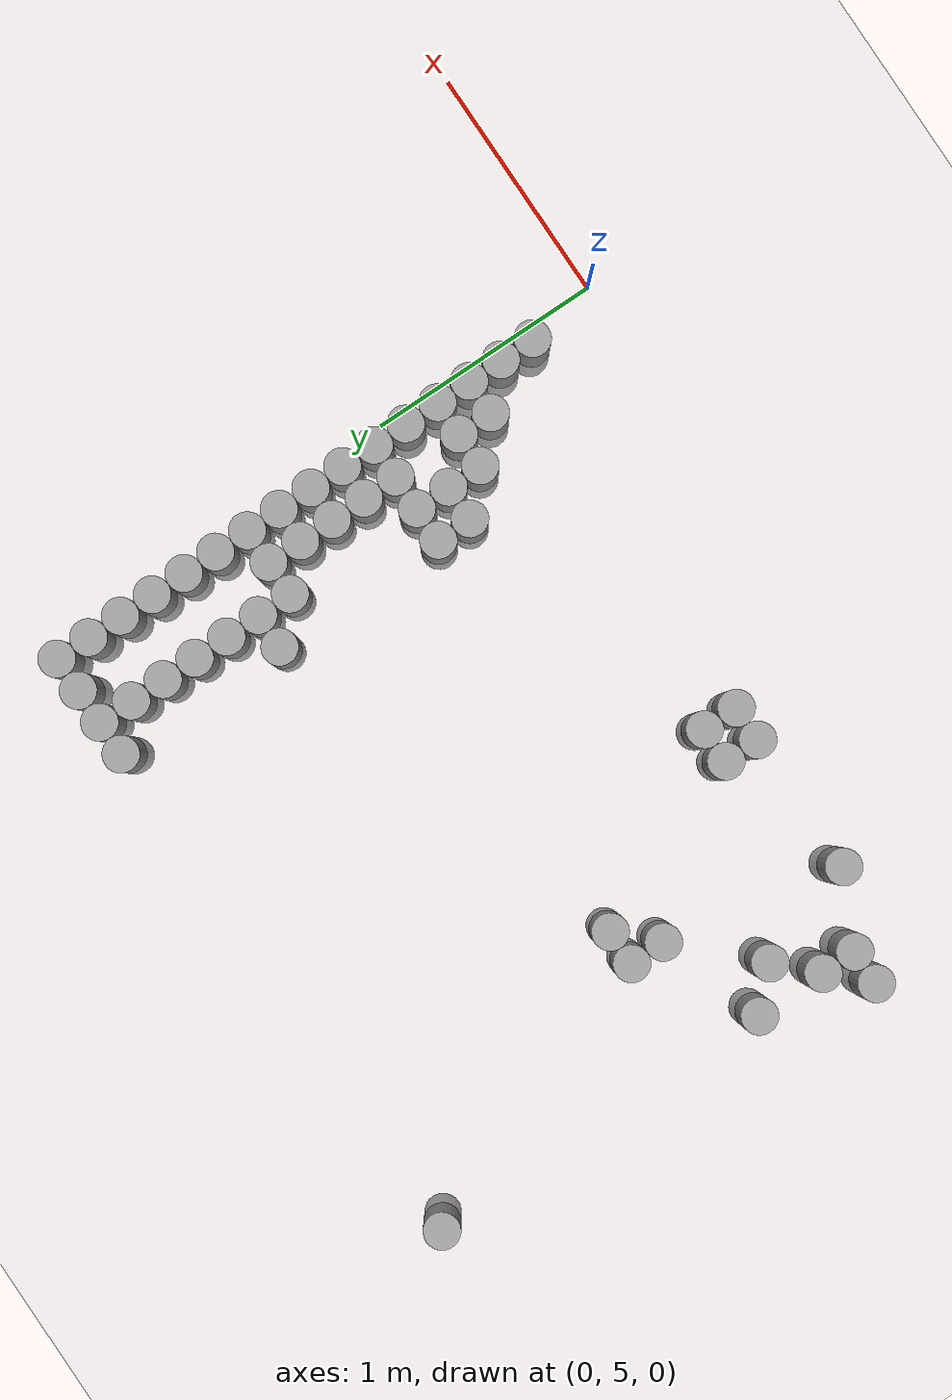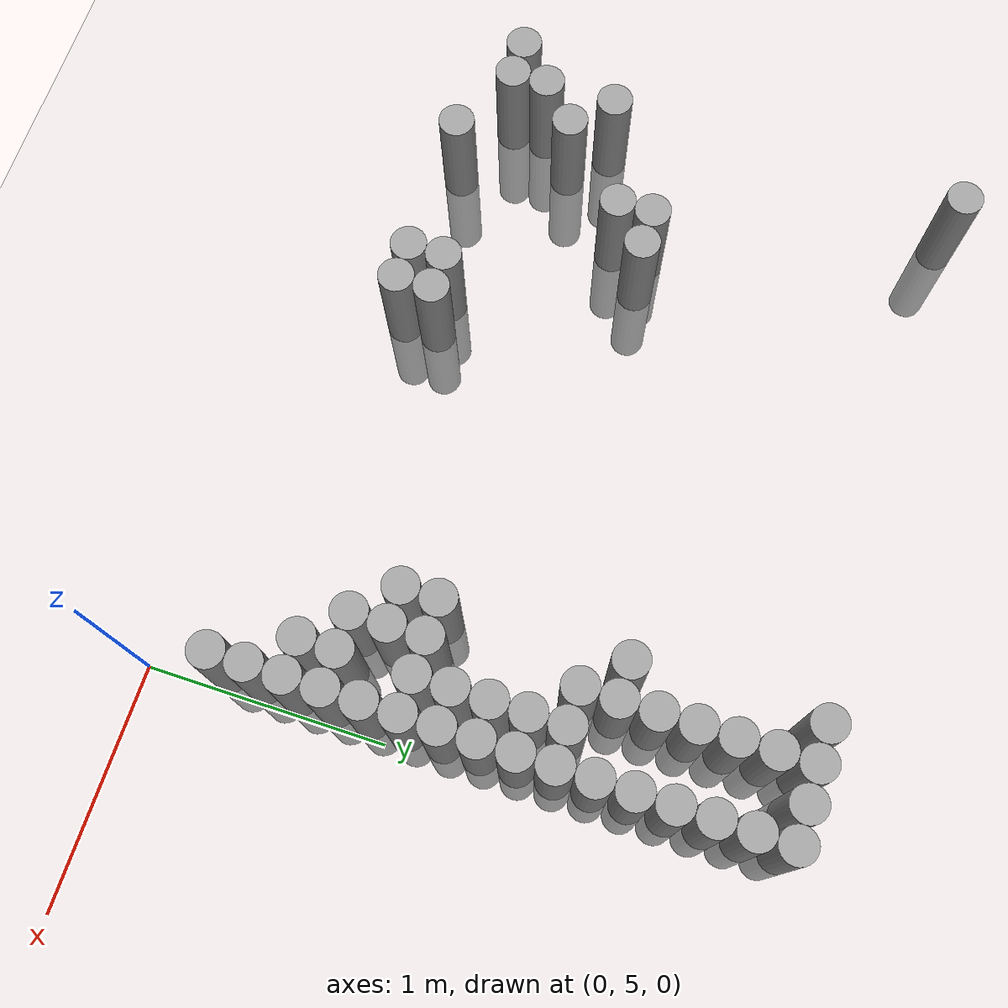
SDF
<sdf version="1.6">
 <world name="default">
  <model name="ground_plane">
   <static>1</static>
   <static>1</static>
   <link name="link">
    <collision name="collision">
     <geometry><plane><normal>0 0 1</normal><size>100 100</size></plane></geometry>
     <surface><friction><ode><mu>100</mu><mu2>50</mu2></ode></friction></surface>
    </collision>
    <visual name="visual">
     <cast_shadows>0</cast_shadows>
     <geometry><plane><normal>0 0 1</normal><size>100 100</size></plane></geometry>
     <material>
      <script><uri>file://media/materials/scripts/gazebo.material</uri><name>Gazebo/Grey</name></script>
     </material>
    </visual>
   </link>
  </model>
  <model name="unit_cylinder_159">
   <static>1</static>
   <pose>-2.925000 5.625000 0.000000 0.000000 0.000000 0.000000</pose>
   <link name="link">
    <inertial>
     <mass>1</mass>
     <inertia><ixx>0.145833</ixx><ixy>0</ixy><ixz>0</ixz><iyy>0.145833</iyy><iyz>0</iyz><izz>0.125</izz></inertia>
    </inertial>
    <collision name="collision">
     <geometry><cylinder><radius>0.075000</radius><length>1</length></cylinder></geometry>
    </collision>
    <visual name="visual">
     <geometry><cylinder><radius>0.075000</radius><length>1</length></cylinder></geometry>
     <material>
      <script><name>Gazebo/Grey</name><uri>file://media/materials/scripts/gazebo.material</uri></script>
     </material>
    </visual>
   </link>
  </model>
  <model name="unit_cylinder_163">
   <static>1</static>
   <pose>-2.775000 5.625000 0.000000 0.000000 0.000000 0.000000</pose>
   <link name="link">
    <inertial>
     <mass>1</mass>
     <inertia><ixx>0.145833</ixx><ixy>0</ixy><ixz>0</ixz><iyy>0.145833</iyy><iyz>0</iyz><izz>0.125</izz></inertia>
    </inertial>
    <collision name="collision">
     <geometry><cylinder><radius>0.075000</radius><length>1</length></cylinder></geometry>
    </collision>
    <visual name="visual">
     <geometry><cylinder><radius>0.075000</radius><length>1</length></cylinder></geometry>
     <material>
      <script><name>Gazebo/Grey</name><uri>file://media/materials/scripts/gazebo.material</uri></script>
     </material>
    </visual>
   </link>
  </model>
  <model name="unit_cylinder_164">
   <static>1</static>
   <pose>-2.775000 5.775000 0.000000 0.000000 0.000000 0.000000</pose>
   <link name="link">
    <inertial>
     <mass>1</mass>
     <inertia><ixx>0.145833</ixx><ixy>0</ixy><ixz>0</ixz><iyy>0.145833</iyy><iyz>0</iyz><izz>0.125</izz></inertia>
    </inertial>
    <collision name="collision">
     <geometry><cylinder><radius>0.075000</radius><length>1</length></cylinder></geometry>
    </collision>
    <visual name="visual">
     <geometry><cylinder><radius>0.075000</radius><length>1</length></cylinder></geometry>
     <material>
      <script><name>Gazebo/Grey</name><uri>file://media/materials/scripts/gazebo.material</uri></script>
     </material>
    </visual>
   </link>
  </model>
  <model name="unit_cylinder_165">
   <static>1</static>
   <pose>-2.775000 6.075000 0.000000 0.000000 0.000000 0.000000</pose>
   <link name="link">
    <inertial>
     <mass>1</mass>
     <inertia><ixx>0.145833</ixx><ixy>0</ixy><ixz>0</ixz><iyy>0.145833</iyy><iyz>0</iyz><izz>0.125</izz></inertia>
    </inertial>
    <collision name="collision">
     <geometry><cylinder><radius>0.075000</radius><length>1</length></cylinder></geometry>
    </collision>
    <visual name="visual">
     <geometry><cylinder><radius>0.075000</radius><length>1</length></cylinder></geometry>
     <material>
      <script><name>Gazebo/Grey</name><uri>file://media/materials/scripts/gazebo.material</uri></script>
     </material>
    </visual>
   </link>
  </model>
  <model name="unit_cylinder_166">
   <static>1</static>
   <pose>-2.775000 7.575000 0.000000 0.000000 0.000000 0.000000</pose>
   <link name="link">
    <inertial>
     <mass>1</mass>
     <inertia><ixx>0.145833</ixx><ixy>0</ixy><ixz>0</ixz><iyy>0.145833</iyy><iyz>0</iyz><izz>0.125</izz></inertia>
    </inertial>
    <collision name="collision">
     <geometry><cylinder><radius>0.075000</radius><length>1</length></cylinder></geometry>
    </collision>
    <visual name="visual">
     <geometry><cylinder><radius>0.075000</radius><length>1</length></cylinder></geometry>
     <material>
      <script><name>Gazebo/Grey</name><uri>file://media/materials/scripts/gazebo.material</uri></script>
     </material>
    </visual>
   </link>
  </model>
  <model name="unit_cylinder_172">
   <static>1</static>
   <pose>-2.625000 5.925000 0.000000 0.000000 0.000000 0.000000</pose>
   <link name="link">
    <inertial>
     <mass>1</mass>
     <inertia><ixx>0.145833</ixx><ixy>0</ixy><ixz>0</ixz><iyy>0.145833</iyy><iyz>0</iyz><izz>0.125</izz></inertia>
    </inertial>
    <collision name="collision">
     <geometry><cylinder><radius>0.075000</radius><length>1</length></cylinder></geometry>
    </collision>
    <visual name="visual">
     <geometry><cylinder><radius>0.075000</radius><length>1</length></cylinder></geometry>
     <material>
      <script><name>Gazebo/Grey</name><uri>file://media/materials/scripts/gazebo.material</uri></script>
     </material>
    </visual>
   </link>
  </model>
  <model name="unit_cylinder_179">
   <static>1</static>
   <pose>-2.475000 5.475000 0.000000 0.000000 0.000000 0.000000</pose>
   <link name="link">
    <inertial>
     <mass>1</mass>
     <inertia><ixx>0.145833</ixx><ixy>0</ixy><ixz>0</ixz><iyy>0.145833</iyy><iyz>0</iyz><izz>0.125</izz></inertia>
    </inertial>
    <collision name="collision">
     <geometry><cylinder><radius>0.075000</radius><length>1</length></cylinder></geometry>
    </collision>
    <visual name="visual">
     <geometry><cylinder><radius>0.075000</radius><length>1</length></cylinder></geometry>
     <material>
      <script><name>Gazebo/Grey</name><uri>file://media/materials/scripts/gazebo.material</uri></script>
     </material>
    </visual>
   </link>
  </model>
  <model name="unit_cylinder_183">
   <static>1</static>
   <pose>-2.325000 6.225000 0.000000 0.000000 0.000000 0.000000</pose>
   <link name="link">
    <inertial>
     <mass>1</mass>
     <inertia><ixx>0.145833</ixx><ixy>0</ixy><ixz>0</ixz><iyy>0.145833</iyy><iyz>0</iyz><izz>0.125</izz></inertia>
    </inertial>
    <collision name="collision">
     <geometry><cylinder><radius>0.075000</radius><length>1</length></cylinder></geometry>
    </collision>
    <visual name="visual">
     <geometry><cylinder><radius>0.075000</radius><length>1</length></cylinder></geometry>
     <material>
      <script><name>Gazebo/Grey</name><uri>file://media/materials/scripts/gazebo.material</uri></script>
     </material>
    </visual>
   </link>
  </model>
  <model name="unit_cylinder_184">
   <static>1</static>
   <pose>-2.325000 6.375000 0.000000 0.000000 0.000000 0.000000</pose>
   <link name="link">
    <inertial>
     <mass>1</mass>
     <inertia><ixx>0.145833</ixx><ixy>0</ixy><ixz>0</ixz><iyy>0.145833</iyy><iyz>0</iyz><izz>0.125</izz></inertia>
    </inertial>
    <collision name="collision">
     <geometry><cylinder><radius>0.075000</radius><length>1</length></cylinder></geometry>
    </collision>
    <visual name="visual">
     <geometry><cylinder><radius>0.075000</radius><length>1</length></cylinder></geometry>
     <material>
      <script><name>Gazebo/Grey</name><uri>file://media/materials/scripts/gazebo.material</uri></script>
     </material>
    </visual>
   </link>
  </model>
  <model name="unit_cylinder_187">
   <static>1</static>
   <pose>-2.175000 6.375000 0.000000 0.000000 0.000000 0.000000</pose>
   <link name="link">
    <inertial>
     <mass>1</mass>
     <inertia><ixx>0.145833</ixx><ixy>0</ixy><ixz>0</ixz><iyy>0.145833</iyy><iyz>0</iyz><izz>0.125</izz></inertia>
    </inertial>
    <collision name="collision">
     <geometry><cylinder><radius>0.075000</radius><length>1</length></cylinder></geometry>
    </collision>
    <visual name="visual">
     <geometry><cylinder><radius>0.075000</radius><length>1</length></cylinder></geometry>
     <material>
      <script><name>Gazebo/Grey</name><uri>file://media/materials/scripts/gazebo.material</uri></script>
     </material>
    </visual>
   </link>
  </model>
  <model name="unit_cylinder_191">
   <static>1</static>
   <pose>-1.875000 5.475000 0.000000 0.000000 0.000000 0.000000</pose>
   <link name="link">
    <inertial>
     <mass>1</mass>
     <inertia><ixx>0.145833</ixx><ixy>0</ixy><ixz>0</ixz><iyy>0.145833</iyy><iyz>0</iyz><izz>0.125</izz></inertia>
    </inertial>
    <collision name="collision">
     <geometry><cylinder><radius>0.075000</radius><length>1</length></cylinder></geometry>
    </collision>
    <visual name="visual">
     <geometry><cylinder><radius>0.075000</radius><length>1</length></cylinder></geometry>
     <material>
      <script><name>Gazebo/Grey</name><uri>file://media/materials/scripts/gazebo.material</uri></script>
     </material>
    </visual>
   </link>
  </model>
  <model name="unit_cylinder_192">
   <static>1</static>
   <pose>-1.875000 5.625000 0.000000 0.000000 0.000000 0.000000</pose>
   <link name="link">
    <inertial>
     <mass>1</mass>
     <inertia><ixx>0.145833</ixx><ixy>0</ixy><ixz>0</ixz><iyy>0.145833</iyy><iyz>0</iyz><izz>0.125</izz></inertia>
    </inertial>
    <collision name="collision">
     <geometry><cylinder><radius>0.075000</radius><length>1</length></cylinder></geometry>
    </collision>
    <visual name="visual">
     <geometry><cylinder><radius>0.075000</radius><length>1</length></cylinder></geometry>
     <material>
      <script><name>Gazebo/Grey</name><uri>file://media/materials/scripts/gazebo.material</uri></script>
     </material>
    </visual>
   </link>
  </model>
  <model name="unit_cylinder_193">
   <static>1</static>
   <pose>-1.725000 5.475000 0.000000 0.000000 0.000000 0.000000</pose>
   <link name="link">
    <inertial>
     <mass>1</mass>
     <inertia><ixx>0.145833</ixx><ixy>0</ixy><ixz>0</ixz><iyy>0.145833</iyy><iyz>0</iyz><izz>0.125</izz></inertia>
    </inertial>
    <collision name="collision">
     <geometry><cylinder><radius>0.075000</radius><length>1</length></cylinder></geometry>
    </collision>
    <visual name="visual">
     <geometry><cylinder><radius>0.075000</radius><length>1</length></cylinder></geometry>
     <material>
      <script><name>Gazebo/Grey</name><uri>file://media/materials/scripts/gazebo.material</uri></script>
     </material>
    </visual>
   </link>
  </model>
  <model name="unit_cylinder_194">
   <static>1</static>
   <pose>-1.725000 5.625000 0.000000 0.000000 0.000000 0.000000</pose>
   <link name="link">
    <inertial>
     <mass>1</mass>
     <inertia><ixx>0.145833</ixx><ixy>0</ixy><ixz>0</ixz><iyy>0.145833</iyy><iyz>0</iyz><izz>0.125</izz></inertia>
    </inertial>
    <collision name="collision">
     <geometry><cylinder><radius>0.075000</radius><length>1</length></cylinder></geometry>
    </collision>
    <visual name="visual">
     <geometry><cylinder><radius>0.075000</radius><length>1</length></cylinder></geometry>
     <material>
      <script><name>Gazebo/Grey</name><uri>file://media/materials/scripts/gazebo.material</uri></script>
     </material>
    </visual>
   </link>
  </model>
  <model name="unit_cylinder_200">
   <static>1</static>
   <pose>-0.525000 5.925000 0.000000 0.000000 0.000000 0.000000</pose>
   <link name="link">
    <inertial>
     <mass>1</mass>
     <inertia><ixx>0.145833</ixx><ixy>0</ixy><ixz>0</ixz><iyy>0.145833</iyy><iyz>0</iyz><izz>0.125</izz></inertia>
    </inertial>
    <collision name="collision">
     <geometry><cylinder><radius>0.075000</radius><length>1</length></cylinder></geometry>
    </collision>
    <visual name="visual">
     <geometry><cylinder><radius>0.075000</radius><length>1</length></cylinder></geometry>
     <material>
      <script><name>Gazebo/Grey</name><uri>file://media/materials/scripts/gazebo.material</uri></script>
     </material>
    </visual>
   </link>
  </model>
  <model name="unit_cylinder_201">
   <static>1</static>
   <pose>-0.525000 6.075000 0.000000 0.000000 0.000000 0.000000</pose>
   <link name="link">
    <inertial>
     <mass>1</mass>
     <inertia><ixx>0.145833</ixx><ixy>0</ixy><ixz>0</ixz><iyy>0.145833</iyy><iyz>0</iyz><izz>0.125</izz></inertia>
    </inertial>
    <collision name="collision">
     <geometry><cylinder><radius>0.075000</radius><length>1</length></cylinder></geometry>
    </collision>
    <visual name="visual">
     <geometry><cylinder><radius>0.075000</radius><length>1</length></cylinder></geometry>
     <material>
      <script><name>Gazebo/Grey</name><uri>file://media/materials/scripts/gazebo.material</uri></script>
     </material>
    </visual>
   </link>
  </model>
  <model name="unit_cylinder_202">
   <static>1</static>
   <pose>-0.525000 6.825000 0.000000 0.000000 0.000000 0.000000</pose>
   <link name="link">
    <inertial>
     <mass>1</mass>
     <inertia><ixx>0.145833</ixx><ixy>0</ixy><ixz>0</ixz><iyy>0.145833</iyy><iyz>0</iyz><izz>0.125</izz></inertia>
    </inertial>
    <collision name="collision">
     <geometry><cylinder><radius>0.075000</radius><length>1</length></cylinder></geometry>
    </collision>
    <visual name="visual">
     <geometry><cylinder><radius>0.075000</radius><length>1</length></cylinder></geometry>
     <material>
      <script><name>Gazebo/Grey</name><uri>file://media/materials/scripts/gazebo.material</uri></script>
     </material>
    </visual>
   </link>
  </model>
  <model name="unit_cylinder_203">
   <static>1</static>
   <pose>-0.525000 7.575000 0.000000 0.000000 0.000000 0.000000</pose>
   <link name="link">
    <inertial>
     <mass>1</mass>
     <inertia><ixx>0.145833</ixx><ixy>0</ixy><ixz>0</ixz><iyy>0.145833</iyy><iyz>0</iyz><izz>0.125</izz></inertia>
    </inertial>
    <collision name="collision">
     <geometry><cylinder><radius>0.075000</radius><length>1</length></cylinder></geometry>
    </collision>
    <visual name="visual">
     <geometry><cylinder><radius>0.075000</radius><length>1</length></cylinder></geometry>
     <material>
      <script><name>Gazebo/Grey</name><uri>file://media/materials/scripts/gazebo.material</uri></script>
     </material>
    </visual>
   </link>
  </model>
  <model name="unit_cylinder_205">
   <static>1</static>
   <pose>-0.375000 5.775000 0.000000 0.000000 0.000000 0.000000</pose>
   <link name="link">
    <inertial>
     <mass>1</mass>
     <inertia><ixx>0.145833</ixx><ixy>0</ixy><ixz>0</ixz><iyy>0.145833</iyy><iyz>0</iyz><izz>0.125</izz></inertia>
    </inertial>
    <collision name="collision">
     <geometry><cylinder><radius>0.075000</radius><length>1</length></cylinder></geometry>
    </collision>
    <visual name="visual">
     <geometry><cylinder><radius>0.075000</radius><length>1</length></cylinder></geometry>
     <material>
      <script><name>Gazebo/Grey</name><uri>file://media/materials/scripts/gazebo.material</uri></script>
     </material>
    </visual>
   </link>
  </model>
  <model name="unit_cylinder_206">
   <static>1</static>
   <pose>-0.375000 5.925000 0.000000 0.000000 0.000000 0.000000</pose>
   <link name="link">
    <inertial>
     <mass>1</mass>
     <inertia><ixx>0.145833</ixx><ixy>0</ixy><ixz>0</ixz><iyy>0.145833</iyy><iyz>0</iyz><izz>0.125</izz></inertia>
    </inertial>
    <collision name="collision">
     <geometry><cylinder><radius>0.075000</radius><length>1</length></cylinder></geometry>
    </collision>
    <visual name="visual">
     <geometry><cylinder><radius>0.075000</radius><length>1</length></cylinder></geometry>
     <material>
      <script><name>Gazebo/Grey</name><uri>file://media/materials/scripts/gazebo.material</uri></script>
     </material>
    </visual>
   </link>
  </model>
  <model name="unit_cylinder_207">
   <static>1</static>
   <pose>-0.375000 6.075000 0.000000 0.000000 0.000000 0.000000</pose>
   <link name="link">
    <inertial>
     <mass>1</mass>
     <inertia><ixx>0.145833</ixx><ixy>0</ixy><ixz>0</ixz><iyy>0.145833</iyy><iyz>0</iyz><izz>0.125</izz></inertia>
    </inertial>
    <collision name="collision">
     <geometry><cylinder><radius>0.075000</radius><length>1</length></cylinder></geometry>
    </collision>
    <visual name="visual">
     <geometry><cylinder><radius>0.075000</radius><length>1</length></cylinder></geometry>
     <material>
      <script><name>Gazebo/Grey</name><uri>file://media/materials/scripts/gazebo.material</uri></script>
     </material>
    </visual>
   </link>
  </model>
  <model name="unit_cylinder_208">
   <static>1</static>
   <pose>-0.375000 6.675000 0.000000 0.000000 0.000000 0.000000</pose>
   <link name="link">
    <inertial>
     <mass>1</mass>
     <inertia><ixx>0.145833</ixx><ixy>0</ixy><ixz>0</ixz><iyy>0.145833</iyy><iyz>0</iyz><izz>0.125</izz></inertia>
    </inertial>
    <collision name="collision">
     <geometry><cylinder><radius>0.075000</radius><length>1</length></cylinder></geometry>
    </collision>
    <visual name="visual">
     <geometry><cylinder><radius>0.075000</radius><length>1</length></cylinder></geometry>
     <material>
      <script><name>Gazebo/Grey</name><uri>file://media/materials/scripts/gazebo.material</uri></script>
     </material>
    </visual>
   </link>
  </model>
  <model name="unit_cylinder_209">
   <static>1</static>
   <pose>-0.375000 6.825000 0.000000 0.000000 0.000000 0.000000</pose>
   <link name="link">
    <inertial>
     <mass>1</mass>
     <inertia><ixx>0.145833</ixx><ixy>0</ixy><ixz>0</ixz><iyy>0.145833</iyy><iyz>0</iyz><izz>0.125</izz></inertia>
    </inertial>
    <collision name="collision">
     <geometry><cylinder><radius>0.075000</radius><length>1</length></cylinder></geometry>
    </collision>
    <visual name="visual">
     <geometry><cylinder><radius>0.075000</radius><length>1</length></cylinder></geometry>
     <material>
      <script><name>Gazebo/Grey</name><uri>file://media/materials/scripts/gazebo.material</uri></script>
     </material>
    </visual>
   </link>
  </model>
  <model name="unit_cylinder_210">
   <static>1</static>
   <pose>-0.375000 6.975000 0.000000 0.000000 0.000000 0.000000</pose>
   <link name="link">
    <inertial>
     <mass>1</mass>
     <inertia><ixx>0.145833</ixx><ixy>0</ixy><ixz>0</ixz><iyy>0.145833</iyy><iyz>0</iyz><izz>0.125</izz></inertia>
    </inertial>
    <collision name="collision">
     <geometry><cylinder><radius>0.075000</radius><length>1</length></cylinder></geometry>
    </collision>
    <visual name="visual">
     <geometry><cylinder><radius>0.075000</radius><length>1</length></cylinder></geometry>
     <material>
      <script><name>Gazebo/Grey</name><uri>file://media/materials/scripts/gazebo.material</uri></script>
     </material>
    </visual>
   </link>
  </model>
  <model name="unit_cylinder_211">
   <static>1</static>
   <pose>-0.375000 7.125000 0.000000 0.000000 0.000000 0.000000</pose>
   <link name="link">
    <inertial>
     <mass>1</mass>
     <inertia><ixx>0.145833</ixx><ixy>0</ixy><ixz>0</ixz><iyy>0.145833</iyy><iyz>0</iyz><izz>0.125</izz></inertia>
    </inertial>
    <collision name="collision">
     <geometry><cylinder><radius>0.075000</radius><length>1</length></cylinder></geometry>
    </collision>
    <visual name="visual">
     <geometry><cylinder><radius>0.075000</radius><length>1</length></cylinder></geometry>
     <material>
      <script><name>Gazebo/Grey</name><uri>file://media/materials/scripts/gazebo.material</uri></script>
     </material>
    </visual>
   </link>
  </model>
  <model name="unit_cylinder_212">
   <static>1</static>
   <pose>-0.375000 7.275000 0.000000 0.000000 0.000000 0.000000</pose>
   <link name="link">
    <inertial>
     <mass>1</mass>
     <inertia><ixx>0.145833</ixx><ixy>0</ixy><ixz>0</ixz><iyy>0.145833</iyy><iyz>0</iyz><izz>0.125</izz></inertia>
    </inertial>
    <collision name="collision">
     <geometry><cylinder><radius>0.075000</radius><length>1</length></cylinder></geometry>
    </collision>
    <visual name="visual">
     <geometry><cylinder><radius>0.075000</radius><length>1</length></cylinder></geometry>
     <material>
      <script><name>Gazebo/Grey</name><uri>file://media/materials/scripts/gazebo.material</uri></script>
     </material>
    </visual>
   </link>
  </model>
  <model name="unit_cylinder_213">
   <static>1</static>
   <pose>-0.375000 7.425000 0.000000 0.000000 0.000000 0.000000</pose>
   <link name="link">
    <inertial>
     <mass>1</mass>
     <inertia><ixx>0.145833</ixx><ixy>0</ixy><ixz>0</ixz><iyy>0.145833</iyy><iyz>0</iyz><izz>0.125</izz></inertia>
    </inertial>
    <collision name="collision">
     <geometry><cylinder><radius>0.075000</radius><length>1</length></cylinder></geometry>
    </collision>
    <visual name="visual">
     <geometry><cylinder><radius>0.075000</radius><length>1</length></cylinder></geometry>
     <material>
      <script><name>Gazebo/Grey</name><uri>file://media/materials/scripts/gazebo.material</uri></script>
     </material>
    </visual>
   </link>
  </model>
  <model name="unit_cylinder_214">
   <static>1</static>
   <pose>-0.375000 7.575000 0.000000 0.000000 0.000000 0.000000</pose>
   <link name="link">
    <inertial>
     <mass>1</mass>
     <inertia><ixx>0.145833</ixx><ixy>0</ixy><ixz>0</ixz><iyy>0.145833</iyy><iyz>0</iyz><izz>0.125</izz></inertia>
    </inertial>
    <collision name="collision">
     <geometry><cylinder><radius>0.075000</radius><length>1</length></cylinder></geometry>
    </collision>
    <visual name="visual">
     <geometry><cylinder><radius>0.075000</radius><length>1</length></cylinder></geometry>
     <material>
      <script><name>Gazebo/Grey</name><uri>file://media/materials/scripts/gazebo.material</uri></script>
     </material>
    </visual>
   </link>
  </model>
  <model name="unit_cylinder_217">
   <static>1</static>
   <pose>-0.225000 5.625000 0.000000 0.000000 0.000000 0.000000</pose>
   <link name="link">
    <inertial>
     <mass>1</mass>
     <inertia><ixx>0.145833</ixx><ixy>0</ixy><ixz>0</ixz><iyy>0.145833</iyy><iyz>0</iyz><izz>0.125</izz></inertia>
    </inertial>
    <collision name="collision">
     <geometry><cylinder><radius>0.075000</radius><length>1</length></cylinder></geometry>
    </collision>
    <visual name="visual">
     <geometry><cylinder><radius>0.075000</radius><length>1</length></cylinder></geometry>
     <material>
      <script><name>Gazebo/Grey</name><uri>file://media/materials/scripts/gazebo.material</uri></script>
     </material>
    </visual>
   </link>
  </model>
  <model name="unit_cylinder_218">
   <static>1</static>
   <pose>-0.225000 5.775000 0.000000 0.000000 0.000000 0.000000</pose>
   <link name="link">
    <inertial>
     <mass>1</mass>
     <inertia><ixx>0.145833</ixx><ixy>0</ixy><ixz>0</ixz><iyy>0.145833</iyy><iyz>0</iyz><izz>0.125</izz></inertia>
    </inertial>
    <collision name="collision">
     <geometry><cylinder><radius>0.075000</radius><length>1</length></cylinder></geometry>
    </collision>
    <visual name="visual">
     <geometry><cylinder><radius>0.075000</radius><length>1</length></cylinder></geometry>
     <material>
      <script><name>Gazebo/Grey</name><uri>file://media/materials/scripts/gazebo.material</uri></script>
     </material>
    </visual>
   </link>
  </model>
  <model name="unit_cylinder_219">
   <static>1</static>
   <pose>-0.225000 6.075000 0.000000 0.000000 0.000000 0.000000</pose>
   <link name="link">
    <inertial>
     <mass>1</mass>
     <inertia><ixx>0.145833</ixx><ixy>0</ixy><ixz>0</ixz><iyy>0.145833</iyy><iyz>0</iyz><izz>0.125</izz></inertia>
    </inertial>
    <collision name="collision">
     <geometry><cylinder><radius>0.075000</radius><length>1</length></cylinder></geometry>
    </collision>
    <visual name="visual">
     <geometry><cylinder><radius>0.075000</radius><length>1</length></cylinder></geometry>
     <material>
      <script><name>Gazebo/Grey</name><uri>file://media/materials/scripts/gazebo.material</uri></script>
     </material>
    </visual>
   </link>
  </model>
  <model name="unit_cylinder_220">
   <static>1</static>
   <pose>-0.225000 6.225000 0.000000 0.000000 0.000000 0.000000</pose>
   <link name="link">
    <inertial>
     <mass>1</mass>
     <inertia><ixx>0.145833</ixx><ixy>0</ixy><ixz>0</ixz><iyy>0.145833</iyy><iyz>0</iyz><izz>0.125</izz></inertia>
    </inertial>
    <collision name="collision">
     <geometry><cylinder><radius>0.075000</radius><length>1</length></cylinder></geometry>
    </collision>
    <visual name="visual">
     <geometry><cylinder><radius>0.075000</radius><length>1</length></cylinder></geometry>
     <material>
      <script><name>Gazebo/Grey</name><uri>file://media/materials/scripts/gazebo.material</uri></script>
     </material>
    </visual>
   </link>
  </model>
  <model name="unit_cylinder_221">
   <static>1</static>
   <pose>-0.225000 6.375000 0.000000 0.000000 0.000000 0.000000</pose>
   <link name="link">
    <inertial>
     <mass>1</mass>
     <inertia><ixx>0.145833</ixx><ixy>0</ixy><ixz>0</ixz><iyy>0.145833</iyy><iyz>0</iyz><izz>0.125</izz></inertia>
    </inertial>
    <collision name="collision">
     <geometry><cylinder><radius>0.075000</radius><length>1</length></cylinder></geometry>
    </collision>
    <visual name="visual">
     <geometry><cylinder><radius>0.075000</radius><length>1</length></cylinder></geometry>
     <material>
      <script><name>Gazebo/Grey</name><uri>file://media/materials/scripts/gazebo.material</uri></script>
     </material>
    </visual>
   </link>
  </model>
  <model name="unit_cylinder_222">
   <static>1</static>
   <pose>-0.225000 6.525000 0.000000 0.000000 0.000000 0.000000</pose>
   <link name="link">
    <inertial>
     <mass>1</mass>
     <inertia><ixx>0.145833</ixx><ixy>0</ixy><ixz>0</ixz><iyy>0.145833</iyy><iyz>0</iyz><izz>0.125</izz></inertia>
    </inertial>
    <collision name="collision">
     <geometry><cylinder><radius>0.075000</radius><length>1</length></cylinder></geometry>
    </collision>
    <visual name="visual">
     <geometry><cylinder><radius>0.075000</radius><length>1</length></cylinder></geometry>
     <material>
      <script><name>Gazebo/Grey</name><uri>file://media/materials/scripts/gazebo.material</uri></script>
     </material>
    </visual>
   </link>
  </model>
  <model name="unit_cylinder_223">
   <static>1</static>
   <pose>-0.225000 6.675000 0.000000 0.000000 0.000000 0.000000</pose>
   <link name="link">
    <inertial>
     <mass>1</mass>
     <inertia><ixx>0.145833</ixx><ixy>0</ixy><ixz>0</ixz><iyy>0.145833</iyy><iyz>0</iyz><izz>0.125</izz></inertia>
    </inertial>
    <collision name="collision">
     <geometry><cylinder><radius>0.075000</radius><length>1</length></cylinder></geometry>
    </collision>
    <visual name="visual">
     <geometry><cylinder><radius>0.075000</radius><length>1</length></cylinder></geometry>
     <material>
      <script><name>Gazebo/Grey</name><uri>file://media/materials/scripts/gazebo.material</uri></script>
     </material>
    </visual>
   </link>
  </model>
  <model name="unit_cylinder_224">
   <static>1</static>
   <pose>-0.225000 7.575000 0.000000 0.000000 0.000000 0.000000</pose>
   <link name="link">
    <inertial>
     <mass>1</mass>
     <inertia><ixx>0.145833</ixx><ixy>0</ixy><ixz>0</ixz><iyy>0.145833</iyy><iyz>0</iyz><izz>0.125</izz></inertia>
    </inertial>
    <collision name="collision">
     <geometry><cylinder><radius>0.075000</radius><length>1</length></cylinder></geometry>
    </collision>
    <visual name="visual">
     <geometry><cylinder><radius>0.075000</radius><length>1</length></cylinder></geometry>
     <material>
      <script><name>Gazebo/Grey</name><uri>file://media/materials/scripts/gazebo.material</uri></script>
     </material>
    </visual>
   </link>
  </model>
  <model name="unit_cylinder_231">
   <static>1</static>
   <pose>-0.075000 5.325000 0.000000 0.000000 0.000000 0.000000</pose>
   <link name="link">
    <inertial>
     <mass>1</mass>
     <inertia><ixx>0.145833</ixx><ixy>0</ixy><ixz>0</ixz><iyy>0.145833</iyy><iyz>0</iyz><izz>0.125</izz></inertia>
    </inertial>
    <collision name="collision">
     <geometry><cylinder><radius>0.075000</radius><length>1</length></cylinder></geometry>
    </collision>
    <visual name="visual">
     <geometry><cylinder><radius>0.075000</radius><length>1</length></cylinder></geometry>
     <material>
      <script><name>Gazebo/Grey</name><uri>file://media/materials/scripts/gazebo.material</uri></script>
     </material>
    </visual>
   </link>
  </model>
  <model name="unit_cylinder_232">
   <static>1</static>
   <pose>-0.075000 5.475000 0.000000 0.000000 0.000000 0.000000</pose>
   <link name="link">
    <inertial>
     <mass>1</mass>
     <inertia><ixx>0.145833</ixx><ixy>0</ixy><ixz>0</ixz><iyy>0.145833</iyy><iyz>0</iyz><izz>0.125</izz></inertia>
    </inertial>
    <collision name="collision">
     <geometry><cylinder><radius>0.075000</radius><length>1</length></cylinder></geometry>
    </collision>
    <visual name="visual">
     <geometry><cylinder><radius>0.075000</radius><length>1</length></cylinder></geometry>
     <material>
      <script><name>Gazebo/Grey</name><uri>file://media/materials/scripts/gazebo.material</uri></script>
     </material>
    </visual>
   </link>
  </model>
  <model name="unit_cylinder_233">
   <static>1</static>
   <pose>-0.075000 5.625000 0.000000 0.000000 0.000000 0.000000</pose>
   <link name="link">
    <inertial>
     <mass>1</mass>
     <inertia><ixx>0.145833</ixx><ixy>0</ixy><ixz>0</ixz><iyy>0.145833</iyy><iyz>0</iyz><izz>0.125</izz></inertia>
    </inertial>
    <collision name="collision">
     <geometry><cylinder><radius>0.075000</radius><length>1</length></cylinder></geometry>
    </collision>
    <visual name="visual">
     <geometry><cylinder><radius>0.075000</radius><length>1</length></cylinder></geometry>
     <material>
      <script><name>Gazebo/Grey</name><uri>file://media/materials/scripts/gazebo.material</uri></script>
     </material>
    </visual>
   </link>
  </model>
  <model name="unit_cylinder_234">
   <static>1</static>
   <pose>-0.075000 5.775000 0.000000 0.000000 0.000000 0.000000</pose>
   <link name="link">
    <inertial>
     <mass>1</mass>
     <inertia><ixx>0.145833</ixx><ixy>0</ixy><ixz>0</ixz><iyy>0.145833</iyy><iyz>0</iyz><izz>0.125</izz></inertia>
    </inertial>
    <collision name="collision">
     <geometry><cylinder><radius>0.075000</radius><length>1</length></cylinder></geometry>
    </collision>
    <visual name="visual">
     <geometry><cylinder><radius>0.075000</radius><length>1</length></cylinder></geometry>
     <material>
      <script><name>Gazebo/Grey</name><uri>file://media/materials/scripts/gazebo.material</uri></script>
     </material>
    </visual>
   </link>
  </model>
  <model name="unit_cylinder_235">
   <static>1</static>
   <pose>-0.075000 5.925000 0.000000 0.000000 0.000000 0.000000</pose>
   <link name="link">
    <inertial>
     <mass>1</mass>
     <inertia><ixx>0.145833</ixx><ixy>0</ixy><ixz>0</ixz><iyy>0.145833</iyy><iyz>0</iyz><izz>0.125</izz></inertia>
    </inertial>
    <collision name="collision">
     <geometry><cylinder><radius>0.075000</radius><length>1</length></cylinder></geometry>
    </collision>
    <visual name="visual">
     <geometry><cylinder><radius>0.075000</radius><length>1</length></cylinder></geometry>
     <material>
      <script><name>Gazebo/Grey</name><uri>file://media/materials/scripts/gazebo.material</uri></script>
     </material>
    </visual>
   </link>
  </model>
  <model name="unit_cylinder_236">
   <static>1</static>
   <pose>-0.075000 6.075000 0.000000 0.000000 0.000000 0.000000</pose>
   <link name="link">
    <inertial>
     <mass>1</mass>
     <inertia><ixx>0.145833</ixx><ixy>0</ixy><ixz>0</ixz><iyy>0.145833</iyy><iyz>0</iyz><izz>0.125</izz></inertia>
    </inertial>
    <collision name="collision">
     <geometry><cylinder><radius>0.075000</radius><length>1</length></cylinder></geometry>
    </collision>
    <visual name="visual">
     <geometry><cylinder><radius>0.075000</radius><length>1</length></cylinder></geometry>
     <material>
      <script><name>Gazebo/Grey</name><uri>file://media/materials/scripts/gazebo.material</uri></script>
     </material>
    </visual>
   </link>
  </model>
  <model name="unit_cylinder_237">
   <static>1</static>
   <pose>-0.075000 6.225000 0.000000 0.000000 0.000000 0.000000</pose>
   <link name="link">
    <inertial>
     <mass>1</mass>
     <inertia><ixx>0.145833</ixx><ixy>0</ixy><ixz>0</ixz><iyy>0.145833</iyy><iyz>0</iyz><izz>0.125</izz></inertia>
    </inertial>
    <collision name="collision">
     <geometry><cylinder><radius>0.075000</radius><length>1</length></cylinder></geometry>
    </collision>
    <visual name="visual">
     <geometry><cylinder><radius>0.075000</radius><length>1</length></cylinder></geometry>
     <material>
      <script><name>Gazebo/Grey</name><uri>file://media/materials/scripts/gazebo.material</uri></script>
     </material>
    </visual>
   </link>
  </model>
  <model name="unit_cylinder_238">
   <static>1</static>
   <pose>-0.075000 6.375000 0.000000 0.000000 0.000000 0.000000</pose>
   <link name="link">
    <inertial>
     <mass>1</mass>
     <inertia><ixx>0.145833</ixx><ixy>0</ixy><ixz>0</ixz><iyy>0.145833</iyy><iyz>0</iyz><izz>0.125</izz></inertia>
    </inertial>
    <collision name="collision">
     <geometry><cylinder><radius>0.075000</radius><length>1</length></cylinder></geometry>
    </collision>
    <visual name="visual">
     <geometry><cylinder><radius>0.075000</radius><length>1</length></cylinder></geometry>
     <material>
      <script><name>Gazebo/Grey</name><uri>file://media/materials/scripts/gazebo.material</uri></script>
     </material>
    </visual>
   </link>
  </model>
  <model name="unit_cylinder_239">
   <static>1</static>
   <pose>-0.075000 6.525000 0.000000 0.000000 0.000000 0.000000</pose>
   <link name="link">
    <inertial>
     <mass>1</mass>
     <inertia><ixx>0.145833</ixx><ixy>0</ixy><ixz>0</ixz><iyy>0.145833</iyy><iyz>0</iyz><izz>0.125</izz></inertia>
    </inertial>
    <collision name="collision">
     <geometry><cylinder><radius>0.075000</radius><length>1</length></cylinder></geometry>
    </collision>
    <visual name="visual">
     <geometry><cylinder><radius>0.075000</radius><length>1</length></cylinder></geometry>
     <material>
      <script><name>Gazebo/Grey</name><uri>file://media/materials/scripts/gazebo.material</uri></script>
     </material>
    </visual>
   </link>
  </model>
  <model name="unit_cylinder_240">
   <static>1</static>
   <pose>-0.075000 6.675000 0.000000 0.000000 0.000000 0.000000</pose>
   <link name="link">
    <inertial>
     <mass>1</mass>
     <inertia><ixx>0.145833</ixx><ixy>0</ixy><ixz>0</ixz><iyy>0.145833</iyy><iyz>0</iyz><izz>0.125</izz></inertia>
    </inertial>
    <collision name="collision">
     <geometry><cylinder><radius>0.075000</radius><length>1</length></cylinder></geometry>
    </collision>
    <visual name="visual">
     <geometry><cylinder><radius>0.075000</radius><length>1</length></cylinder></geometry>
     <material>
      <script><name>Gazebo/Grey</name><uri>file://media/materials/scripts/gazebo.material</uri></script>
     </material>
    </visual>
   </link>
  </model>
  <model name="unit_cylinder_241">
   <static>1</static>
   <pose>-0.075000 6.825000 0.000000 0.000000 0.000000 0.000000</pose>
   <link name="link">
    <inertial>
     <mass>1</mass>
     <inertia><ixx>0.145833</ixx><ixy>0</ixy><ixz>0</ixz><iyy>0.145833</iyy><iyz>0</iyz><izz>0.125</izz></inertia>
    </inertial>
    <collision name="collision">
     <geometry><cylinder><radius>0.075000</radius><length>1</length></cylinder></geometry>
    </collision>
    <visual name="visual">
     <geometry><cylinder><radius>0.075000</radius><length>1</length></cylinder></geometry>
     <material>
      <script><name>Gazebo/Grey</name><uri>file://media/materials/scripts/gazebo.material</uri></script>
     </material>
    </visual>
   </link>
  </model>
  <model name="unit_cylinder_242">
   <static>1</static>
   <pose>-0.075000 6.975000 0.000000 0.000000 0.000000 0.000000</pose>
   <link name="link">
    <inertial>
     <mass>1</mass>
     <inertia><ixx>0.145833</ixx><ixy>0</ixy><ixz>0</ixz><iyy>0.145833</iyy><iyz>0</iyz><izz>0.125</izz></inertia>
    </inertial>
    <collision name="collision">
     <geometry><cylinder><radius>0.075000</radius><length>1</length></cylinder></geometry>
    </collision>
    <visual name="visual">
     <geometry><cylinder><radius>0.075000</radius><length>1</length></cylinder></geometry>
     <material>
      <script><name>Gazebo/Grey</name><uri>file://media/materials/scripts/gazebo.material</uri></script>
     </material>
    </visual>
   </link>
  </model>
  <model name="unit_cylinder_243">
   <static>1</static>
   <pose>-0.075000 7.125000 0.000000 0.000000 0.000000 0.000000</pose>
   <link name="link">
    <inertial>
     <mass>1</mass>
     <inertia><ixx>0.145833</ixx><ixy>0</ixy><ixz>0</ixz><iyy>0.145833</iyy><iyz>0</iyz><izz>0.125</izz></inertia>
    </inertial>
    <collision name="collision">
     <geometry><cylinder><radius>0.075000</radius><length>1</length></cylinder></geometry>
    </collision>
    <visual name="visual">
     <geometry><cylinder><radius>0.075000</radius><length>1</length></cylinder></geometry>
     <material>
      <script><name>Gazebo/Grey</name><uri>file://media/materials/scripts/gazebo.material</uri></script>
     </material>
    </visual>
   </link>
  </model>
  <model name="unit_cylinder_244">
   <static>1</static>
   <pose>-0.075000 7.275000 0.000000 0.000000 0.000000 0.000000</pose>
   <link name="link">
    <inertial>
     <mass>1</mass>
     <inertia><ixx>0.145833</ixx><ixy>0</ixy><ixz>0</ixz><iyy>0.145833</iyy><iyz>0</iyz><izz>0.125</izz></inertia>
    </inertial>
    <collision name="collision">
     <geometry><cylinder><radius>0.075000</radius><length>1</length></cylinder></geometry>
    </collision>
    <visual name="visual">
     <geometry><cylinder><radius>0.075000</radius><length>1</length></cylinder></geometry>
     <material>
      <script><name>Gazebo/Grey</name><uri>file://media/materials/scripts/gazebo.material</uri></script>
     </material>
    </visual>
   </link>
  </model>
  <model name="unit_cylinder_245">
   <static>1</static>
   <pose>-0.075000 7.425000 0.000000 0.000000 0.000000 0.000000</pose>
   <link name="link">
    <inertial>
     <mass>1</mass>
     <inertia><ixx>0.145833</ixx><ixy>0</ixy><ixz>0</ixz><iyy>0.145833</iyy><iyz>0</iyz><izz>0.125</izz></inertia>
    </inertial>
    <collision name="collision">
     <geometry><cylinder><radius>0.075000</radius><length>1</length></cylinder></geometry>
    </collision>
    <visual name="visual">
     <geometry><cylinder><radius>0.075000</radius><length>1</length></cylinder></geometry>
     <material>
      <script><name>Gazebo/Grey</name><uri>file://media/materials/scripts/gazebo.material</uri></script>
     </material>
    </visual>
   </link>
  </model>
  <model name="unit_cylinder_246">
   <static>1</static>
   <pose>-0.075000 7.575000 0.000000 0.000000 0.000000 0.000000</pose>
   <link name="link">
    <inertial>
     <mass>1</mass>
     <inertia><ixx>0.145833</ixx><ixy>0</ixy><ixz>0</ixz><iyy>0.145833</iyy><iyz>0</iyz><izz>0.125</izz></inertia>
    </inertial>
    <collision name="collision">
     <geometry><cylinder><radius>0.075000</radius><length>1</length></cylinder></geometry>
    </collision>
    <visual name="visual">
     <geometry><cylinder><radius>0.075000</radius><length>1</length></cylinder></geometry>
     <material>
      <script><name>Gazebo/Grey</name><uri>file://media/materials/scripts/gazebo.material</uri></script>
     </material>
    </visual>
   </link>
  </model>
 </world>
</sdf>
